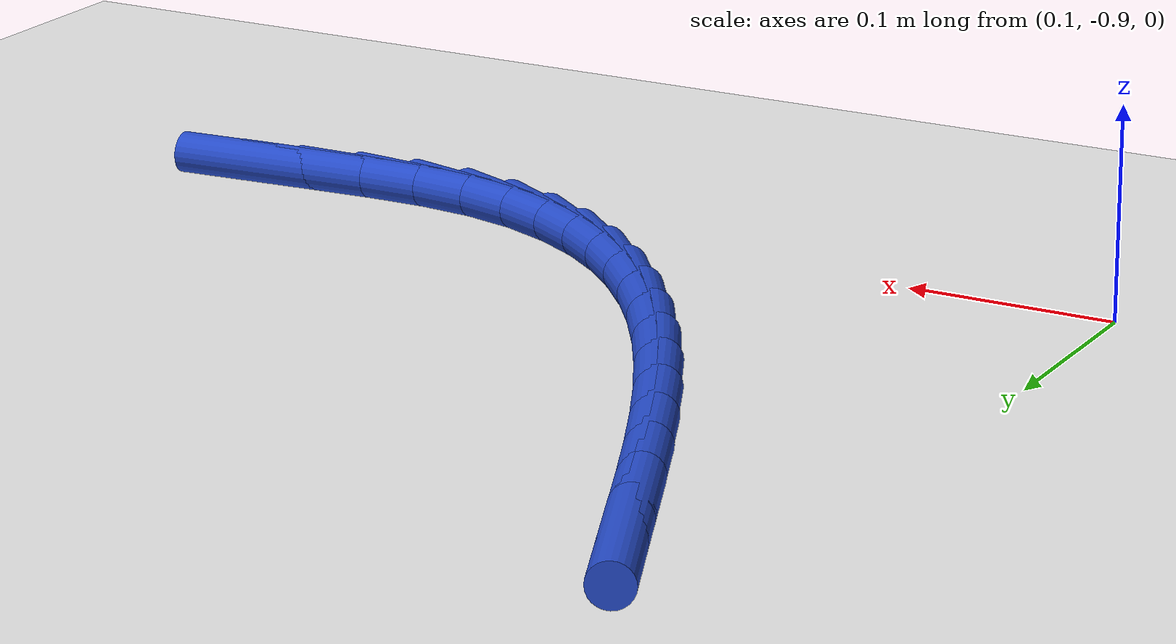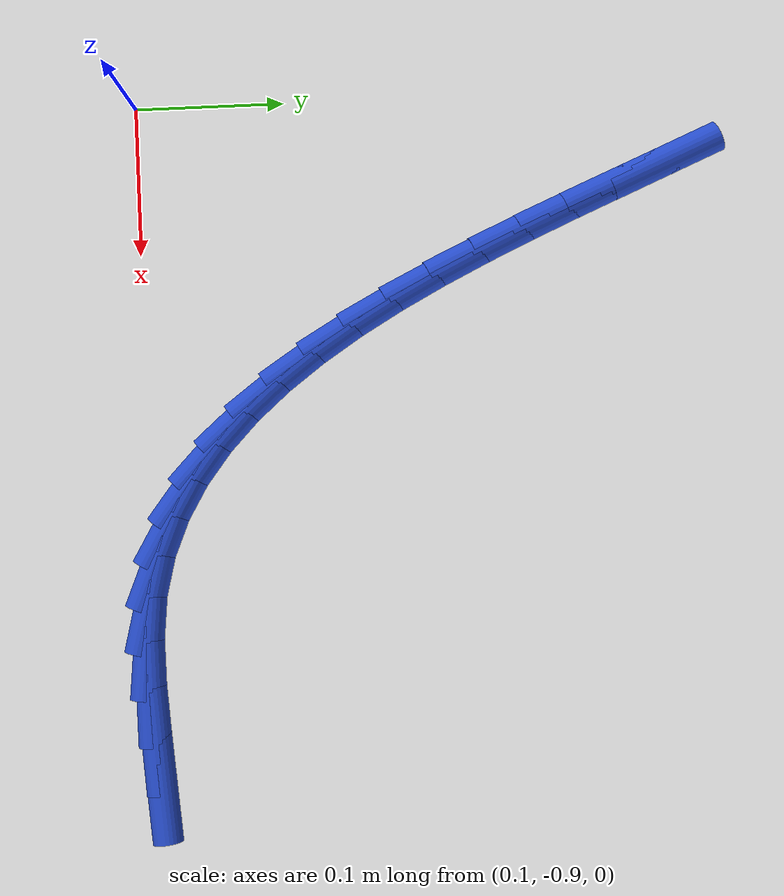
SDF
<sdf version="1.6">
 <world name="default">
  <model name="ground_plane">
   <static>1</static>
   <link name="link">
    <collision name="collision">
     <geometry><plane><normal>0 0 1</normal><size>100 100</size></plane></geometry>
     <surface><friction><ode><mu>100</mu><mu2>50</mu2></ode></friction></surface>
    </collision>
    <visual name="visual">
     <cast_shadows>0</cast_shadows>
     <geometry><plane><normal>0 0 1</normal><size>100 100</size></plane></geometry>
     <material>
      <script><uri>file://media/materials/scripts/gazebo.material</uri><name>Gazebo/WhiteGlow</name></script>
     </material>
    </visual>
   </link>
  </model>
  <model name="line">
   <link name="link_202">
    <pose>0.5506205875359413 -0.8966213203026946 0.01 0 1.57 0.0773165618564434</pose>
    <collision name="collision">
     <geometry><cylinder><radius>0.01</radius><length>0.08</length></cylinder></geometry>
    </collision>
    <visual name="visual">
     <material>
      <script><name>Gazebo/Blue</name><uri>file://media/materials/scripts/gazebo.material</uri></script>
     </material>
     <geometry><cylinder><radius>0.01</radius><length>0.08</length></cylinder></geometry>
    </visual>
   </link>
   <link name="link_203">
    <pose>0.5191497577256264 -0.8990593967519542 0.01 0 1.57 0.0672237573709403</pose>
    <collision name="collision">
     <geometry><cylinder><radius>0.01</radius><length>0.08</length></cylinder></geometry>
    </collision>
    <visual name="visual">
     <material>
      <script><name>Gazebo/Blue</name><uri>file://media/materials/scripts/gazebo.material</uri></script>
     </material>
     <geometry><cylinder><radius>0.01</radius><length>0.08</length></cylinder></geometry>
    </visual>
   </link>
   <link name="link_204">
    <pose>0.4877965005470909 -0.9011702611526857 0.01 0 1.57 0.011667026798385521</pose>
    <collision name="collision">
     <geometry><cylinder><radius>0.01</radius><length>0.08</length></cylinder></geometry>
    </collision>
    <visual name="visual">
     <material>
      <script><name>Gazebo/Blue</name><uri>file://media/materials/scripts/gazebo.material</uri></script>
     </material>
     <geometry><cylinder><radius>0.01</radius><length>0.08</length></cylinder></geometry>
    </visual>
   </link>
   <link name="link_205">
    <pose>0.457240772525976 -0.901526771826519 0.01 0 1.57 -0.09647917234191737</pose>
    <collision name="collision">
     <geometry><cylinder><radius>0.01</radius><length>0.08</length></cylinder></geometry>
    </collision>
    <visual name="visual">
     <material>
      <script><name>Gazebo/Blue</name><uri>file://media/materials/scripts/gazebo.material</uri></script>
     </material>
     <geometry><cylinder><radius>0.01</radius><length>0.08</length></cylinder></geometry>
    </visual>
   </link>
   <link name="link_206">
    <pose>0.42815777820385276 -0.8987121300693655 0.01 0 1.57 -0.24351208962303533</pose>
    <collision name="collision">
     <geometry><cylinder><radius>0.01</radius><length>0.08</length></cylinder></geometry>
    </collision>
    <visual name="visual">
     <material>
      <script><name>Gazebo/Blue</name><uri>file://media/materials/scripts/gazebo.material</uri></script>
     </material>
     <geometry><cylinder><radius>0.01</radius><length>0.08</length></cylinder></geometry>
    </visual>
   </link>
   <link name="link_207">
    <pose>0.4009296152270248 -0.8919475016641412 0.01 0 1.57 -0.3911102169635326</pose>
    <collision name="collision">
     <geometry><cylinder><radius>0.01</radius><length>0.08</length></cylinder></geometry>
    </collision>
    <visual name="visual">
     <material>
      <script><name>Gazebo/Blue</name><uri>file://media/materials/scripts/gazebo.material</uri></script>
     </material>
     <geometry><cylinder><radius>0.01</radius><length>0.08</length></cylinder></geometry>
    </visual>
   </link>
   <link name="link_208">
    <pose>0.3754794120268726 -0.8814530260258323 0.01 0 1.57 -0.5293297695095274</pose>
    <collision name="collision">
     <geometry><cylinder><radius>0.01</radius><length>0.08</length></cylinder></geometry>
    </collision>
    <visual name="visual">
     <material>
      <script><name>Gazebo/Blue</name><uri>file://media/materials/scripts/gazebo.material</uri></script>
     </material>
     <geometry><cylinder><radius>0.01</radius><length>0.08</length></cylinder></geometry>
    </visual>
   </link>
   <link name="link_209">
    <pose>0.35169026686744204 -0.8675359705953489 0.01 0 1.57 -0.653456047235666</pose>
    <collision name="collision">
     <geometry><cylinder><radius>0.01</radius><length>0.08</length></cylinder></geometry>
    </collision>
    <visual name="visual">
     <material>
      <script><name>Gazebo/Blue</name><uri>file://media/materials/scripts/gazebo.material</uri></script>
     </material>
     <geometry><cylinder><radius>0.01</radius><length>0.08</length></cylinder></geometry>
    </visual>
   </link>
   <link name="link_210">
    <pose>0.32944527801277695 -0.8505036028136015 0.01 0 1.57 -0.7613652573630929</pose>
    <collision name="collision">
     <geometry><cylinder><radius>0.01</radius><length>0.08</length></cylinder></geometry>
    </collision>
    <visual name="visual">
     <material>
      <script><name>Gazebo/Blue</name><uri>file://media/materials/scripts/gazebo.material</uri></script>
     </material>
     <geometry><cylinder><radius>0.01</radius><length>0.08</length></cylinder></geometry>
    </visual>
   </link>
   <link name="link_211">
    <pose>0.30862754372692236 -0.8306631901214999 0.01 0 1.57 -0.8530107262557843</pose>
    <collision name="collision">
     <geometry><cylinder><radius>0.01</radius><length>0.08</length></cylinder></geometry>
    </collision>
    <visual name="visual">
     <material>
      <script><name>Gazebo/Blue</name><uri>file://media/materials/scripts/gazebo.material</uri></script>
     </material>
     <geometry><cylinder><radius>0.01</radius><length>0.08</length></cylinder></geometry>
    </visual>
   </link>
   <link name="link_212">
    <pose>0.28912016227392234 -0.8083219999599541 0.01 0 1.57 -0.9295710031957588</pose>
    <collision name="collision">
     <geometry><cylinder><radius>0.01</radius><length>0.08</length></cylinder></geometry>
    </collision>
    <visual name="visual">
     <material>
      <script><name>Gazebo/Blue</name><uri>file://media/materials/scripts/gazebo.material</uri></script>
     </material>
     <geometry><cylinder><radius>0.01</radius><length>0.08</length></cylinder></geometry>
    </visual>
   </link>
   <link name="link_213">
    <pose>0.2708062319178218 -0.7837872997698746 0.01 0 1.57 -0.9927262830511402</pose>
    <collision name="collision">
     <geometry><cylinder><radius>0.01</radius><length>0.08</length></cylinder></geometry>
    </collision>
    <visual name="visual">
     <material>
      <script><name>Gazebo/Blue</name><uri>file://media/materials/scripts/gazebo.material</uri></script>
     </material>
     <geometry><cylinder><radius>0.01</radius><length>0.08</length></cylinder></geometry>
    </visual>
   </link>
   <link name="link_214">
    <pose>0.25356885092266546 -0.7573663569921711 0.01 0 1.57 -1.0442034534143967</pose>
    <collision name="collision">
     <geometry><cylinder><radius>0.01</radius><length>0.08</length></cylinder></geometry>
    </collision>
    <visual name="visual">
     <material>
      <script><name>Gazebo/Blue</name><uri>file://media/materials/scripts/gazebo.material</uri></script>
     </material>
     <geometry><cylinder><radius>0.01</radius><length>0.08</length></cylinder></geometry>
    </visual>
   </link>
   <link name="link_215">
    <pose>0.23729111755249732 -0.7293664390677532 0.01 0 1.57 -1.0855464098304775</pose>
    <collision name="collision">
     <geometry><cylinder><radius>0.01</radius><length>0.08</length></cylinder></geometry>
    </collision>
    <visual name="visual">
     <material>
      <script><name>Gazebo/Blue</name><uri>file://media/materials/scripts/gazebo.material</uri></script>
     </material>
     <geometry><cylinder><radius>0.01</radius><length>0.08</length></cylinder></geometry>
    </visual>
   </link>
   <link name="link_216">
    <pose>0.22185613007136298 -0.7000948134375327 0.01 0 1.57 -1.1180257212392954</pose>
    <collision name="collision">
     <geometry><cylinder><radius>0.01</radius><length>0.08</length></cylinder></geometry>
    </collision>
    <visual name="visual">
     <material>
      <script><name>Gazebo/Blue</name><uri>file://media/materials/scripts/gazebo.material</uri></script>
     </material>
     <geometry><cylinder><radius>0.01</radius><length>0.08</length></cylinder></geometry>
    </visual>
   </link>
   <link name="link_217">
    <pose>0.20714698674330656 -0.6698587475424187 0.01 0 1.57 -1.1426188101789123</pose>
    <collision name="collision">
     <geometry><cylinder><radius>0.01</radius><length>0.08</length></cylinder></geometry>
    </collision>
    <visual name="visual">
     <material>
      <script><name>Gazebo/Blue</name><uri>file://media/materials/scripts/gazebo.material</uri></script>
     </material>
     <geometry><cylinder><radius>0.01</radius><length>0.08</length></cylinder></geometry>
    </visual>
   </link>
   <link name="link_218">
    <pose>0.19304678583237267 -0.6389655088233213 0.01 0 1.57 -1.1600181600452382</pose>
    <collision name="collision">
     <geometry><cylinder><radius>0.01</radius><length>0.08</length></cylinder></geometry>
    </collision>
    <visual name="visual">
     <material>
      <script><name>Gazebo/Blue</name><uri>file://media/materials/scripts/gazebo.material</uri></script>
     </material>
     <geometry><cylinder><radius>0.01</radius><length>0.08</length></cylinder></geometry>
    </visual>
   </link>
   <link name="link_219">
    <pose>0.17943862560260593 -0.6077223647211506 0.01 0 1.57 -1.17064435553726</pose>
    <collision name="collision">
     <geometry><cylinder><radius>0.01</radius><length>0.08</length></cylinder></geometry>
    </collision>
    <visual name="visual">
     <material>
      <script><name>Gazebo/Blue</name><uri>file://media/materials/scripts/gazebo.material</uri></script>
     </material>
     <geometry><cylinder><radius>0.01</radius><length>0.08</length></cylinder></geometry>
    </visual>
   </link>
   <link name="link_220">
    <pose>0.16620560431805104 -0.5764365826768172 0.01 0 1.57 -1.174651722185709</pose>
    <collision name="collision">
     <geometry><cylinder><radius>0.01</radius><length>0.08</length></cylinder></geometry>
    </collision>
    <visual name="visual">
     <material>
      <script><name>Gazebo/Blue</name><uri>file://media/materials/scripts/gazebo.material</uri></script>
     </material>
     <geometry><cylinder><radius>0.01</radius><length>0.08</length></cylinder></geometry>
    </visual>
   </link>
   <link name="link_221">
    <pose>0.1532308202427525 -0.5454154301312306 0.01 0 1.57 -1.1719193929325367</pose>
    <collision name="collision">
     <geometry><cylinder><radius>0.01</radius><length>0.08</length></cylinder></geometry>
    </collision>
    <visual name="visual">
     <material>
      <script><name>Gazebo/Blue</name><uri>file://media/materials/scripts/gazebo.material</uri></script>
     </material>
     <geometry><cylinder><radius>0.01</radius><length>0.08</length></cylinder></geometry>
    </visual>
   </link>
  </model>
 </world>
</sdf>
